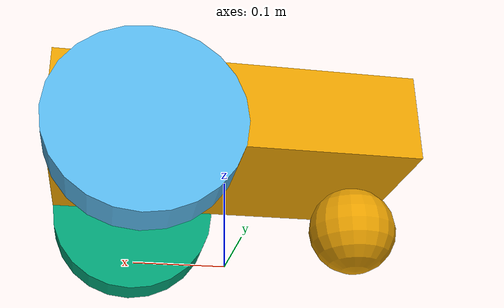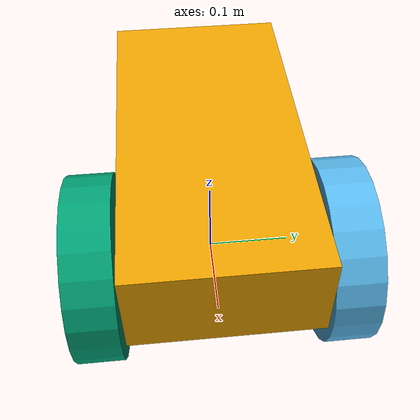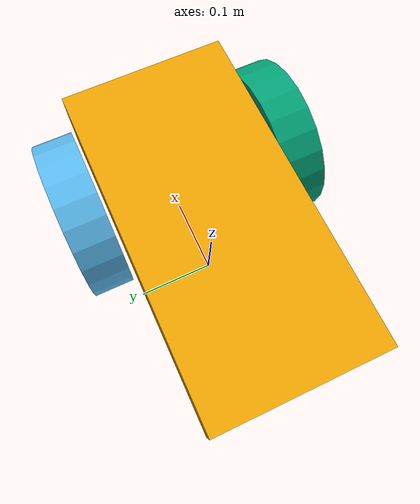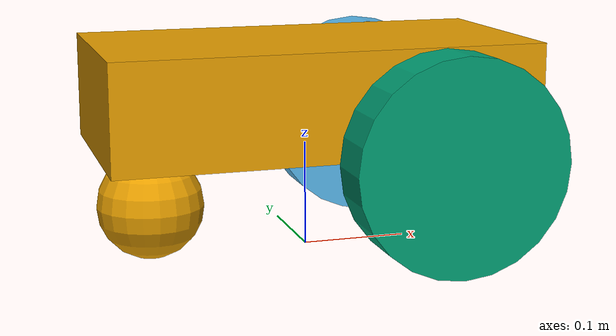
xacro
<?xml version="1.0" ?>

<robot name="$(arg roboname)" xmlns:xacro="http://www.ros.org/wiki/xacro">

<!--Car Body-->
  <link name="robot_chassis">
    <inertial>
      <mass value="5"/>
      <origin xyz="0 0 0" rpy="0 0 0"/>
      <inertia ixx="0" ixy="0" ixz="0" iyy="0" iyz="0" izz="0"/>
    </inertial>
    <collision name="chassis_collision">
      <origin xyz="0  0  0.1" rpy="0 0 0"/>
      <geometry>
        <box size=".4 .2 .1"/>
      </geometry>
    </collision>
    <collision name="caster_collision">
      <origin xyz="-0.15  0    0.05" rpy="0 0 0"/>
      <geometry>
        <sphere radius=".05"/>
      </geometry>
    </collision>
    <visual name="chassis_visual">
      <origin xyz="0   0   0.15" rpy="0 0 0"/>
      <geometry>
        <box size=".4 .2 .1"/>
      </geometry>
    </visual>
    <visual name="caster_visual">
      <origin xyz="-0.15  0    0.05" rpy="0 0 0"/>
      <geometry>
        <sphere radius=".05"/>
      </geometry>
    </visual>
  </link>

  <link name="left_wheel">
    <inertial>
      <mass value="1"/>
      <origin xyz="0 0 0" rpy="0 0 0"/>
      <inertia ixx="1" ixy="0" ixz="0" iyy="1" iyz="0" izz="1"/>
    </inertial>
    <collision name="left_wheel_collision">
      <origin xyz="0   0   0.03" rpy="0 0 0"/>
      <geometry>
        <cylinder radius=".1" length=".05"/>
      </geometry>
    </collision>
    <visual name="left_wheel_visual">
      <origin xyz="0   0   0.03" rpy="0 0 0"/>
      <geometry>
        <cylinder radius=".1" length=".05"/>
      </geometry>
    </visual>
  </link>
  <joint name="left_wheel_joint" type="continuous">
    <parent link="robot_chassis"/>
    <child link="left_wheel"/>
    <origin xyz="0.09999 0.1     0.09999" rpy="0     1.5707 1.5707"/>
    <axis xyz="9.e-05 9.e-05 1.e+00"/>
    <limit lower="-10000" upper="10000" effort="0" velocity="0"/>
  </joint>

  <link name="right_wheel">
    <inertial>
      <mass value="1"/>
      <origin xyz="0 0 0" rpy="0 0 0"/>
      <inertia ixx="1" ixy="0" ixz="0" iyy="1" iyz="0" izz="1"/>
    </inertial>
    <collision name="right_wheel_collision">
      <origin xyz="0    0   -0.03" rpy="0 0 0"/>
      <geometry>
        <cylinder radius=".1" length=".05"/>
      </geometry>
    </collision>
    <visual name="right_wheel_visual">
      <origin xyz="0    0   -0.03" rpy="0 0 0"/>
      <geometry>
        <cylinder radius=".1" length=".05"/>
      </geometry>
    </visual>
  </link>

  <joint name="right_wheel_joint" type="continuous">
    <parent link="robot_chassis"/>
    <child link="right_wheel"/>
    <origin xyz="0.1 -0.1  0.1" rpy="0     1.5707 1.5707"/>
    <axis xyz="9.e-05 9.e-05 1.e+00"/>
    <limit lower="-10000" upper="10000" effort="0" velocity="0"/>
  </joint>

</robot>
